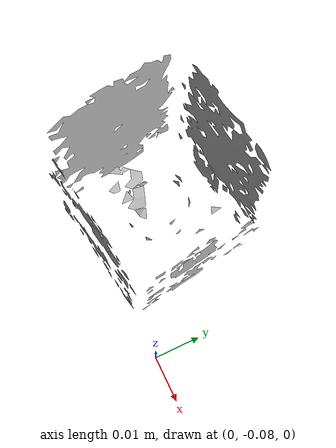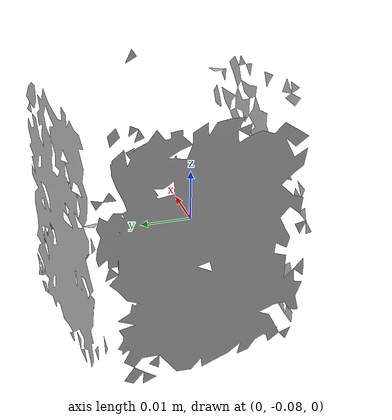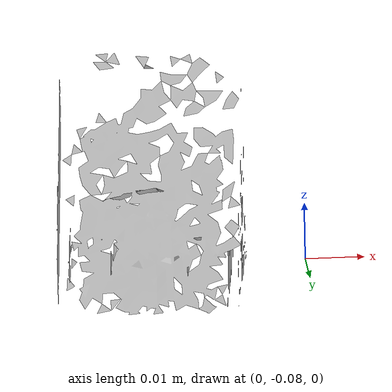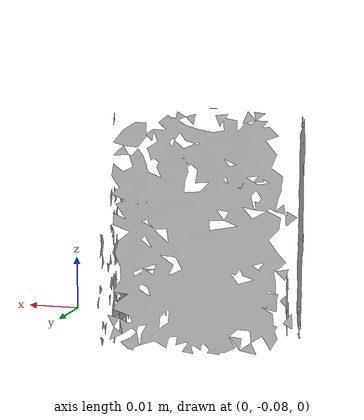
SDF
<?xml version="1.0" ?>
<sdf version="1.4">
  <model name='ycb_073-f_lego_duplo'>
    <link name='body'>
      <inertial>
        <mass>0.0417809308719</mass>
        <pose>-0.0283036531267 -0.066461090192 0.0236072058656 0 0 0</pose>
        <inertia>
          <ixx>7.97892885422e-06</ixx>
          <ixy>-1.27195776216e-09</ixy>
          <ixz>4.12030156663e-08</ixz>
          <iyy>7.96782495994e-06</iyy>
          <iyz>2.24204294506e-08</iyz>
          <izz>7.6904956139e-06</izz>
        </inertia>
      </inertial>
      <visual name='ycb_073-f_lego_duplo_visual'>
        <pose>0 0 0 0 0 0</pose>
        <geometry>
          <mesh>
            <uri>model://ycb_073-f_lego_duplo/meshes/textured.dae</uri>
          </mesh>
        </geometry>
      </visual>
      <collision name='ycb_073-f_lego_duplo_collision'>
        <pose>0 0 0 0 0 0</pose>
        <geometry>
          <mesh>
            <uri>model://ycb_073-f_lego_duplo/meshes/nontextured.stl</uri>
          </mesh>
        </geometry>
        <max_contacts>10</max_contacts>
      </collision>
    </link>
  </model>
</sdf>
